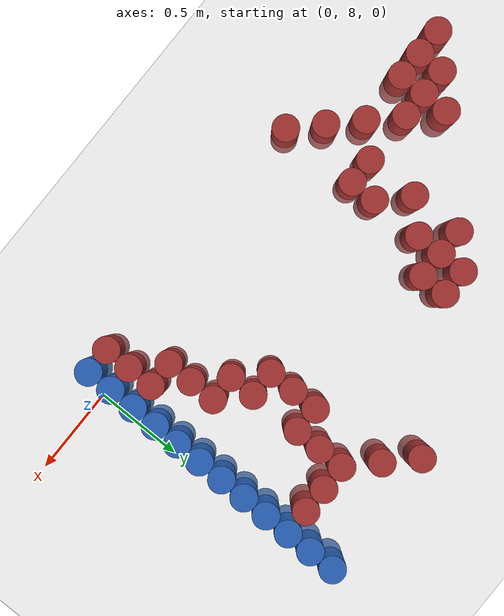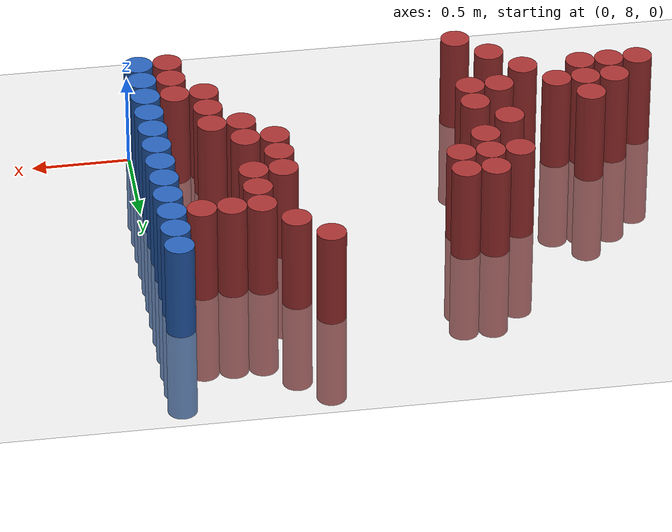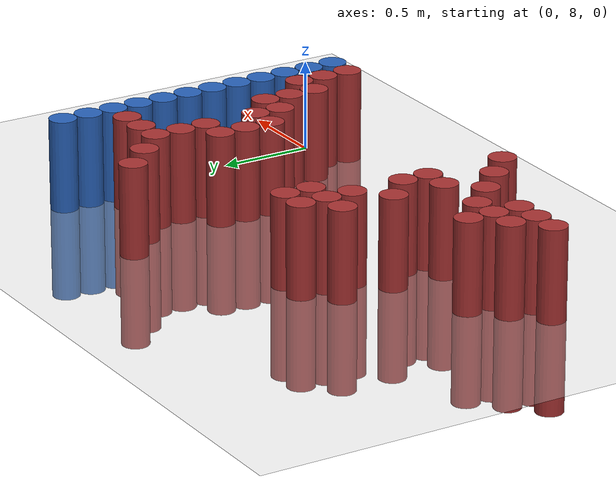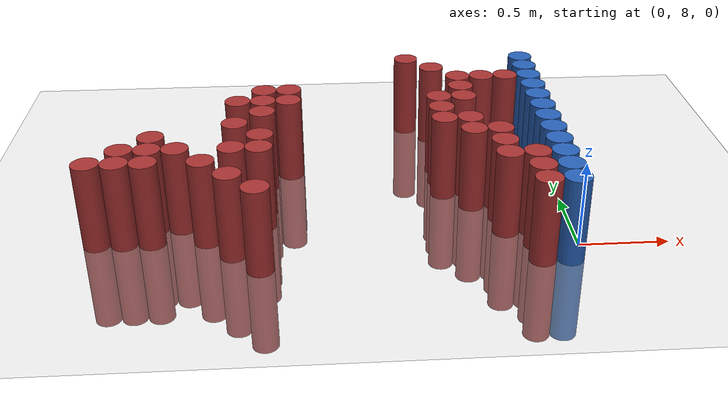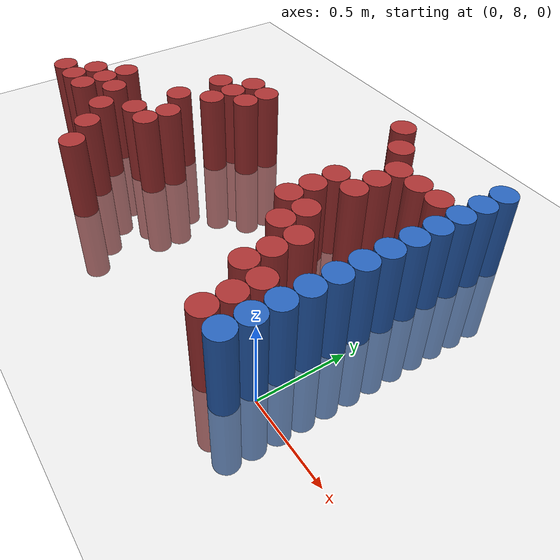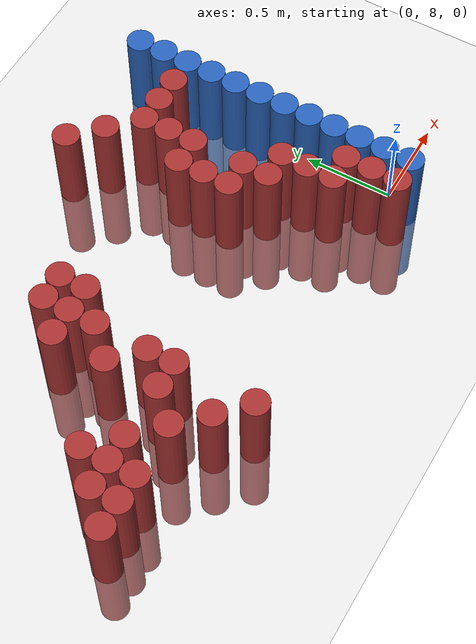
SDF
<sdf version="1.6">
 <world name="default">
  <model name="ground_plane">
   <static>1</static>
   <link name="link">
    <collision name="collision">
     <geometry><plane><normal>0 0 1</normal><size>100 100</size></plane></geometry>
     <surface><friction><ode><mu>100</mu><mu2>50</mu2></ode></friction></surface>
    </collision>
    <visual name="visual">
     <cast_shadows>0</cast_shadows>
     <geometry><plane><normal>0 0 1</normal><size>100 100</size></plane></geometry>
     <material>
      <script><uri>file://media/materials/scripts/gazebo.material</uri><name>Gazebo/Grey</name></script>
     </material>
    </visual>
   </link>
  </model>
  <model name="unit_cylinder_167">
   <static>1</static>
   <pose>-2.625000 8.175000 0.000000 0.000000 0.000000 0.000000</pose>
   <link name="link">
    <inertial>
     <mass>1</mass>
     <inertia><ixx>0.145833</ixx><ixy>0</ixy><ixz>0</ixz><iyy>0.145833</iyy><iyz>0</iyz><izz>0.125</izz></inertia>
    </inertial>
    <collision name="collision">
     <geometry><cylinder><radius>0.075000</radius><length>1</length></cylinder></geometry>
    </collision>
    <visual name="visual">
     <geometry><cylinder><radius>0.075000</radius><length>1</length></cylinder></geometry>
     <material>
      <ambient>0.648000 0.192000 0.192000 1</ambient>
      <diffuse>0.648000 0.192000 0.192000 1</diffuse>
     </material>
     <material>
      <script><name>Gazebo/Grey</name><uri>file://media/materials/scripts/gazebo.material</uri></script>
     </material>
    </visual>
   </link>
  </model>
  <model name="unit_cylinder_170">
   <static>1</static>
   <pose>-2.475000 8.175000 0.000000 0.000000 0.000000 0.000000</pose>
   <link name="link">
    <inertial>
     <mass>1</mass>
     <inertia><ixx>0.145833</ixx><ixy>0</ixy><ixz>0</ixz><iyy>0.145833</iyy><iyz>0</iyz><izz>0.125</izz></inertia>
    </inertial>
    <collision name="collision">
     <geometry><cylinder><radius>0.075000</radius><length>1</length></cylinder></geometry>
    </collision>
    <visual name="visual">
     <geometry><cylinder><radius>0.075000</radius><length>1</length></cylinder></geometry>
     <material>
      <ambient>0.648000 0.192000 0.192000 1</ambient>
      <diffuse>0.648000 0.192000 0.192000 1</diffuse>
     </material>
     <material>
      <script><name>Gazebo/Grey</name><uri>file://media/materials/scripts/gazebo.material</uri></script>
     </material>
    </visual>
   </link>
  </model>
  <model name="unit_cylinder_171">
   <static>1</static>
   <pose>-2.475000 8.325000 0.000000 0.000000 0.000000 0.000000</pose>
   <link name="link">
    <inertial>
     <mass>1</mass>
     <inertia><ixx>0.145833</ixx><ixy>0</ixy><ixz>0</ixz><iyy>0.145833</iyy><iyz>0</iyz><izz>0.125</izz></inertia>
    </inertial>
    <collision name="collision">
     <geometry><cylinder><radius>0.075000</radius><length>1</length></cylinder></geometry>
    </collision>
    <visual name="visual">
     <geometry><cylinder><radius>0.075000</radius><length>1</length></cylinder></geometry>
     <material>
      <ambient>0.648000 0.192000 0.192000 1</ambient>
      <diffuse>0.648000 0.192000 0.192000 1</diffuse>
     </material>
     <material>
      <script><name>Gazebo/Grey</name><uri>file://media/materials/scripts/gazebo.material</uri></script>
     </material>
    </visual>
   </link>
  </model>
  <model name="unit_cylinder_173">
   <static>1</static>
   <pose>-2.325000 8.175000 0.000000 0.000000 0.000000 0.000000</pose>
   <link name="link">
    <inertial>
     <mass>1</mass>
     <inertia><ixx>0.145833</ixx><ixy>0</ixy><ixz>0</ixz><iyy>0.145833</iyy><iyz>0</iyz><izz>0.125</izz></inertia>
    </inertial>
    <collision name="collision">
     <geometry><cylinder><radius>0.075000</radius><length>1</length></cylinder></geometry>
    </collision>
    <visual name="visual">
     <geometry><cylinder><radius>0.075000</radius><length>1</length></cylinder></geometry>
     <material>
      <ambient>0.648000 0.192000 0.192000 1</ambient>
      <diffuse>0.648000 0.192000 0.192000 1</diffuse>
     </material>
     <material>
      <script><name>Gazebo/Grey</name><uri>file://media/materials/scripts/gazebo.material</uri></script>
     </material>
    </visual>
   </link>
  </model>
  <model name="unit_cylinder_174">
   <static>1</static>
   <pose>-2.325000 8.325000 0.000000 0.000000 0.000000 0.000000</pose>
   <link name="link">
    <inertial>
     <mass>1</mass>
     <inertia><ixx>0.145833</ixx><ixy>0</ixy><ixz>0</ixz><iyy>0.145833</iyy><iyz>0</iyz><izz>0.125</izz></inertia>
    </inertial>
    <collision name="collision">
     <geometry><cylinder><radius>0.075000</radius><length>1</length></cylinder></geometry>
    </collision>
    <visual name="visual">
     <geometry><cylinder><radius>0.075000</radius><length>1</length></cylinder></geometry>
     <material>
      <ambient>0.648000 0.192000 0.192000 1</ambient>
      <diffuse>0.648000 0.192000 0.192000 1</diffuse>
     </material>
     <material>
      <script><name>Gazebo/Grey</name><uri>file://media/materials/scripts/gazebo.material</uri></script>
     </material>
    </visual>
   </link>
  </model>
  <model name="unit_cylinder_175">
   <static>1</static>
   <pose>-2.325000 8.475000 0.000000 0.000000 0.000000 0.000000</pose>
   <link name="link">
    <inertial>
     <mass>1</mass>
     <inertia><ixx>0.145833</ixx><ixy>0</ixy><ixz>0</ixz><iyy>0.145833</iyy><iyz>0</iyz><izz>0.125</izz></inertia>
    </inertial>
    <collision name="collision">
     <geometry><cylinder><radius>0.075000</radius><length>1</length></cylinder></geometry>
    </collision>
    <visual name="visual">
     <geometry><cylinder><radius>0.075000</radius><length>1</length></cylinder></geometry>
     <material>
      <ambient>0.648000 0.192000 0.192000 1</ambient>
      <diffuse>0.648000 0.192000 0.192000 1</diffuse>
     </material>
     <material>
      <script><name>Gazebo/Grey</name><uri>file://media/materials/scripts/gazebo.material</uri></script>
     </material>
    </visual>
   </link>
  </model>
  <model name="unit_cylinder_177">
   <static>1</static>
   <pose>-2.175000 8.325000 0.000000 0.000000 0.000000 0.000000</pose>
   <link name="link">
    <inertial>
     <mass>1</mass>
     <inertia><ixx>0.145833</ixx><ixy>0</ixy><ixz>0</ixz><iyy>0.145833</iyy><iyz>0</iyz><izz>0.125</izz></inertia>
    </inertial>
    <collision name="collision">
     <geometry><cylinder><radius>0.075000</radius><length>1</length></cylinder></geometry>
    </collision>
    <visual name="visual">
     <geometry><cylinder><radius>0.075000</radius><length>1</length></cylinder></geometry>
     <material>
      <ambient>0.648000 0.192000 0.192000 1</ambient>
      <diffuse>0.648000 0.192000 0.192000 1</diffuse>
     </material>
     <material>
      <script><name>Gazebo/Grey</name><uri>file://media/materials/scripts/gazebo.material</uri></script>
     </material>
    </visual>
   </link>
  </model>
  <model name="unit_cylinder_181">
   <static>1</static>
   <pose>-2.025000 8.175000 0.000000 0.000000 0.000000 0.000000</pose>
   <link name="link">
    <inertial>
     <mass>1</mass>
     <inertia><ixx>0.145833</ixx><ixy>0</ixy><ixz>0</ixz><iyy>0.145833</iyy><iyz>0</iyz><izz>0.125</izz></inertia>
    </inertial>
    <collision name="collision">
     <geometry><cylinder><radius>0.075000</radius><length>1</length></cylinder></geometry>
    </collision>
    <visual name="visual">
     <geometry><cylinder><radius>0.075000</radius><length>1</length></cylinder></geometry>
     <material>
      <ambient>0.648000 0.192000 0.192000 1</ambient>
      <diffuse>0.648000 0.192000 0.192000 1</diffuse>
     </material>
     <material>
      <script><name>Gazebo/Grey</name><uri>file://media/materials/scripts/gazebo.material</uri></script>
     </material>
    </visual>
   </link>
  </model>
  <model name="unit_cylinder_188">
   <static>1</static>
   <pose>-1.875000 8.025000 0.000000 0.000000 0.000000 0.000000</pose>
   <link name="link">
    <inertial>
     <mass>1</mass>
     <inertia><ixx>0.145833</ixx><ixy>0</ixy><ixz>0</ixz><iyy>0.145833</iyy><iyz>0</iyz><izz>0.125</izz></inertia>
    </inertial>
    <collision name="collision">
     <geometry><cylinder><radius>0.075000</radius><length>1</length></cylinder></geometry>
    </collision>
    <visual name="visual">
     <geometry><cylinder><radius>0.075000</radius><length>1</length></cylinder></geometry>
     <material>
      <ambient>0.648000 0.192000 0.192000 1</ambient>
      <diffuse>0.648000 0.192000 0.192000 1</diffuse>
     </material>
     <material>
      <script><name>Gazebo/Grey</name><uri>file://media/materials/scripts/gazebo.material</uri></script>
     </material>
    </visual>
   </link>
  </model>
  <model name="unit_cylinder_189">
   <static>1</static>
   <pose>-1.875000 8.325000 0.000000 0.000000 0.000000 0.000000</pose>
   <link name="link">
    <inertial>
     <mass>1</mass>
     <inertia><ixx>0.145833</ixx><ixy>0</ixy><ixz>0</ixz><iyy>0.145833</iyy><iyz>0</iyz><izz>0.125</izz></inertia>
    </inertial>
    <collision name="collision">
     <geometry><cylinder><radius>0.075000</radius><length>1</length></cylinder></geometry>
    </collision>
    <visual name="visual">
     <geometry><cylinder><radius>0.075000</radius><length>1</length></cylinder></geometry>
     <material>
      <ambient>0.648000 0.192000 0.192000 1</ambient>
      <diffuse>0.648000 0.192000 0.192000 1</diffuse>
     </material>
     <material>
      <script><name>Gazebo/Grey</name><uri>file://media/materials/scripts/gazebo.material</uri></script>
     </material>
    </visual>
   </link>
  </model>
  <model name="unit_cylinder_190">
   <static>1</static>
   <pose>-1.875000 8.625000 0.000000 0.000000 0.000000 0.000000</pose>
   <link name="link">
    <inertial>
     <mass>1</mass>
     <inertia><ixx>0.145833</ixx><ixy>0</ixy><ixz>0</ixz><iyy>0.145833</iyy><iyz>0</iyz><izz>0.125</izz></inertia>
    </inertial>
    <collision name="collision">
     <geometry><cylinder><radius>0.075000</radius><length>1</length></cylinder></geometry>
    </collision>
    <visual name="visual">
     <geometry><cylinder><radius>0.075000</radius><length>1</length></cylinder></geometry>
     <material>
      <ambient>0.648000 0.192000 0.192000 1</ambient>
      <diffuse>0.648000 0.192000 0.192000 1</diffuse>
     </material>
     <material>
      <script><name>Gazebo/Grey</name><uri>file://media/materials/scripts/gazebo.material</uri></script>
     </material>
    </visual>
   </link>
  </model>
  <model name="unit_cylinder_191">
   <static>1</static>
   <pose>-1.875000 8.925000 0.000000 0.000000 0.000000 0.000000</pose>
   <link name="link">
    <inertial>
     <mass>1</mass>
     <inertia><ixx>0.145833</ixx><ixy>0</ixy><ixz>0</ixz><iyy>0.145833</iyy><iyz>0</iyz><izz>0.125</izz></inertia>
    </inertial>
    <collision name="collision">
     <geometry><cylinder><radius>0.075000</radius><length>1</length></cylinder></geometry>
    </collision>
    <visual name="visual">
     <geometry><cylinder><radius>0.075000</radius><length>1</length></cylinder></geometry>
     <material>
      <ambient>0.648000 0.192000 0.192000 1</ambient>
      <diffuse>0.648000 0.192000 0.192000 1</diffuse>
     </material>
     <material>
      <script><name>Gazebo/Grey</name><uri>file://media/materials/scripts/gazebo.material</uri></script>
     </material>
    </visual>
   </link>
  </model>
  <model name="unit_cylinder_195">
   <static>1</static>
   <pose>-1.725000 7.875000 0.000000 0.000000 0.000000 0.000000</pose>
   <link name="link">
    <inertial>
     <mass>1</mass>
     <inertia><ixx>0.145833</ixx><ixy>0</ixy><ixz>0</ixz><iyy>0.145833</iyy><iyz>0</iyz><izz>0.125</izz></inertia>
    </inertial>
    <collision name="collision">
     <geometry><cylinder><radius>0.075000</radius><length>1</length></cylinder></geometry>
    </collision>
    <visual name="visual">
     <geometry><cylinder><radius>0.075000</radius><length>1</length></cylinder></geometry>
     <material>
      <ambient>0.648000 0.192000 0.192000 1</ambient>
      <diffuse>0.648000 0.192000 0.192000 1</diffuse>
     </material>
     <material>
      <script><name>Gazebo/Grey</name><uri>file://media/materials/scripts/gazebo.material</uri></script>
     </material>
    </visual>
   </link>
  </model>
  <model name="unit_cylinder_196">
   <static>1</static>
   <pose>-1.725000 8.325000 0.000000 0.000000 0.000000 0.000000</pose>
   <link name="link">
    <inertial>
     <mass>1</mass>
     <inertia><ixx>0.145833</ixx><ixy>0</ixy><ixz>0</ixz><iyy>0.145833</iyy><iyz>0</iyz><izz>0.125</izz></inertia>
    </inertial>
    <collision name="collision">
     <geometry><cylinder><radius>0.075000</radius><length>1</length></cylinder></geometry>
    </collision>
    <visual name="visual">
     <geometry><cylinder><radius>0.075000</radius><length>1</length></cylinder></geometry>
     <material>
      <ambient>0.648000 0.192000 0.192000 1</ambient>
      <diffuse>0.648000 0.192000 0.192000 1</diffuse>
     </material>
     <material>
      <script><name>Gazebo/Grey</name><uri>file://media/materials/scripts/gazebo.material</uri></script>
     </material>
    </visual>
   </link>
  </model>
  <model name="unit_cylinder_197">
   <static>1</static>
   <pose>-1.725000 8.475000 0.000000 0.000000 0.000000 0.000000</pose>
   <link name="link">
    <inertial>
     <mass>1</mass>
     <inertia><ixx>0.145833</ixx><ixy>0</ixy><ixz>0</ixz><iyy>0.145833</iyy><iyz>0</iyz><izz>0.125</izz></inertia>
    </inertial>
    <collision name="collision">
     <geometry><cylinder><radius>0.075000</radius><length>1</length></cylinder></geometry>
    </collision>
    <visual name="visual">
     <geometry><cylinder><radius>0.075000</radius><length>1</length></cylinder></geometry>
     <material>
      <ambient>0.648000 0.192000 0.192000 1</ambient>
      <diffuse>0.648000 0.192000 0.192000 1</diffuse>
     </material>
     <material>
      <script><name>Gazebo/Grey</name><uri>file://media/materials/scripts/gazebo.material</uri></script>
     </material>
    </visual>
   </link>
  </model>
  <model name="unit_cylinder_198">
   <static>1</static>
   <pose>-1.725000 8.775000 0.000000 0.000000 0.000000 0.000000</pose>
   <link name="link">
    <inertial>
     <mass>1</mass>
     <inertia><ixx>0.145833</ixx><ixy>0</ixy><ixz>0</ixz><iyy>0.145833</iyy><iyz>0</iyz><izz>0.125</izz></inertia>
    </inertial>
    <collision name="collision">
     <geometry><cylinder><radius>0.075000</radius><length>1</length></cylinder></geometry>
    </collision>
    <visual name="visual">
     <geometry><cylinder><radius>0.075000</radius><length>1</length></cylinder></geometry>
     <material>
      <ambient>0.648000 0.192000 0.192000 1</ambient>
      <diffuse>0.648000 0.192000 0.192000 1</diffuse>
     </material>
     <material>
      <script><name>Gazebo/Grey</name><uri>file://media/materials/scripts/gazebo.material</uri></script>
     </material>
    </visual>
   </link>
  </model>
  <model name="unit_cylinder_199">
   <static>1</static>
   <pose>-1.725000 8.925000 0.000000 0.000000 0.000000 0.000000</pose>
   <link name="link">
    <inertial>
     <mass>1</mass>
     <inertia><ixx>0.145833</ixx><ixy>0</ixy><ixz>0</ixz><iyy>0.145833</iyy><iyz>0</iyz><izz>0.125</izz></inertia>
    </inertial>
    <collision name="collision">
     <geometry><cylinder><radius>0.075000</radius><length>1</length></cylinder></geometry>
    </collision>
    <visual name="visual">
     <geometry><cylinder><radius>0.075000</radius><length>1</length></cylinder></geometry>
     <material>
      <ambient>0.648000 0.192000 0.192000 1</ambient>
      <diffuse>0.648000 0.192000 0.192000 1</diffuse>
     </material>
     <material>
      <script><name>Gazebo/Grey</name><uri>file://media/materials/scripts/gazebo.material</uri></script>
     </material>
    </visual>
   </link>
  </model>
  <model name="unit_cylinder_200">
   <static>1</static>
   <pose>-1.725000 9.075000 0.000000 0.000000 0.000000 0.000000</pose>
   <link name="link">
    <inertial>
     <mass>1</mass>
     <inertia><ixx>0.145833</ixx><ixy>0</ixy><ixz>0</ixz><iyy>0.145833</iyy><iyz>0</iyz><izz>0.125</izz></inertia>
    </inertial>
    <collision name="collision">
     <geometry><cylinder><radius>0.075000</radius><length>1</length></cylinder></geometry>
    </collision>
    <visual name="visual">
     <geometry><cylinder><radius>0.075000</radius><length>1</length></cylinder></geometry>
     <material>
      <ambient>0.648000 0.192000 0.192000 1</ambient>
      <diffuse>0.648000 0.192000 0.192000 1</diffuse>
     </material>
     <material>
      <script><name>Gazebo/Grey</name><uri>file://media/materials/scripts/gazebo.material</uri></script>
     </material>
    </visual>
   </link>
  </model>
  <model name="unit_cylinder_204">
   <static>1</static>
   <pose>-1.575000 8.925000 0.000000 0.000000 0.000000 0.000000</pose>
   <link name="link">
    <inertial>
     <mass>1</mass>
     <inertia><ixx>0.145833</ixx><ixy>0</ixy><ixz>0</ixz><iyy>0.145833</iyy><iyz>0</iyz><izz>0.125</izz></inertia>
    </inertial>
    <collision name="collision">
     <geometry><cylinder><radius>0.075000</radius><length>1</length></cylinder></geometry>
    </collision>
    <visual name="visual">
     <geometry><cylinder><radius>0.075000</radius><length>1</length></cylinder></geometry>
     <material>
      <ambient>0.648000 0.192000 0.192000 1</ambient>
      <diffuse>0.648000 0.192000 0.192000 1</diffuse>
     </material>
     <material>
      <script><name>Gazebo/Grey</name><uri>file://media/materials/scripts/gazebo.material</uri></script>
     </material>
    </visual>
   </link>
  </model>
  <model name="unit_cylinder_205">
   <static>1</static>
   <pose>-1.575000 9.075000 0.000000 0.000000 0.000000 0.000000</pose>
   <link name="link">
    <inertial>
     <mass>1</mass>
     <inertia><ixx>0.145833</ixx><ixy>0</ixy><ixz>0</ixz><iyy>0.145833</iyy><iyz>0</iyz><izz>0.125</izz></inertia>
    </inertial>
    <collision name="collision">
     <geometry><cylinder><radius>0.075000</radius><length>1</length></cylinder></geometry>
    </collision>
    <visual name="visual">
     <geometry><cylinder><radius>0.075000</radius><length>1</length></cylinder></geometry>
     <material>
      <ambient>0.648000 0.192000 0.192000 1</ambient>
      <diffuse>0.648000 0.192000 0.192000 1</diffuse>
     </material>
     <material>
      <script><name>Gazebo/Grey</name><uri>file://media/materials/scripts/gazebo.material</uri></script>
     </material>
    </visual>
   </link>
  </model>
  <model name="unit_cylinder_234">
   <static>1</static>
   <pose>-0.825000 9.525000 0.000000 0.000000 0.000000 0.000000</pose>
   <link name="link">
    <inertial>
     <mass>1</mass>
     <inertia><ixx>0.145833</ixx><ixy>0</ixy><ixz>0</ixz><iyy>0.145833</iyy><iyz>0</iyz><izz>0.125</izz></inertia>
    </inertial>
    <collision name="collision">
     <geometry><cylinder><radius>0.075000</radius><length>1</length></cylinder></geometry>
    </collision>
    <visual name="visual">
     <geometry><cylinder><radius>0.075000</radius><length>1</length></cylinder></geometry>
     <material>
      <ambient>0.648000 0.192000 0.192000 1</ambient>
      <diffuse>0.648000 0.192000 0.192000 1</diffuse>
     </material>
     <material>
      <script><name>Gazebo/Grey</name><uri>file://media/materials/scripts/gazebo.material</uri></script>
     </material>
    </visual>
   </link>
  </model>
  <model name="unit_cylinder_242">
   <static>1</static>
   <pose>-0.675000 8.625000 0.000000 0.000000 0.000000 0.000000</pose>
   <link name="link">
    <inertial>
     <mass>1</mass>
     <inertia><ixx>0.145833</ixx><ixy>0</ixy><ixz>0</ixz><iyy>0.145833</iyy><iyz>0</iyz><izz>0.125</izz></inertia>
    </inertial>
    <collision name="collision">
     <geometry><cylinder><radius>0.075000</radius><length>1</length></cylinder></geometry>
    </collision>
    <visual name="visual">
     <geometry><cylinder><radius>0.075000</radius><length>1</length></cylinder></geometry>
     <material>
      <ambient>0.648000 0.192000 0.192000 1</ambient>
      <diffuse>0.648000 0.192000 0.192000 1</diffuse>
     </material>
     <material>
      <script><name>Gazebo/Grey</name><uri>file://media/materials/scripts/gazebo.material</uri></script>
     </material>
    </visual>
   </link>
  </model>
  <model name="unit_cylinder_243">
   <static>1</static>
   <pose>-0.675000 8.775000 0.000000 0.000000 0.000000 0.000000</pose>
   <link name="link">
    <inertial>
     <mass>1</mass>
     <inertia><ixx>0.145833</ixx><ixy>0</ixy><ixz>0</ixz><iyy>0.145833</iyy><iyz>0</iyz><izz>0.125</izz></inertia>
    </inertial>
    <collision name="collision">
     <geometry><cylinder><radius>0.075000</radius><length>1</length></cylinder></geometry>
    </collision>
    <visual name="visual">
     <geometry><cylinder><radius>0.075000</radius><length>1</length></cylinder></geometry>
     <material>
      <ambient>0.648000 0.192000 0.192000 1</ambient>
      <diffuse>0.648000 0.192000 0.192000 1</diffuse>
     </material>
     <material>
      <script><name>Gazebo/Grey</name><uri>file://media/materials/scripts/gazebo.material</uri></script>
     </material>
    </visual>
   </link>
  </model>
  <model name="unit_cylinder_244">
   <static>1</static>
   <pose>-0.675000 8.925000 0.000000 0.000000 0.000000 0.000000</pose>
   <link name="link">
    <inertial>
     <mass>1</mass>
     <inertia><ixx>0.145833</ixx><ixy>0</ixy><ixz>0</ixz><iyy>0.145833</iyy><iyz>0</iyz><izz>0.125</izz></inertia>
    </inertial>
    <collision name="collision">
     <geometry><cylinder><radius>0.075000</radius><length>1</length></cylinder></geometry>
    </collision>
    <visual name="visual">
     <geometry><cylinder><radius>0.075000</radius><length>1</length></cylinder></geometry>
     <material>
      <ambient>0.648000 0.192000 0.192000 1</ambient>
      <diffuse>0.648000 0.192000 0.192000 1</diffuse>
     </material>
     <material>
      <script><name>Gazebo/Grey</name><uri>file://media/materials/scripts/gazebo.material</uri></script>
     </material>
    </visual>
   </link>
  </model>
  <model name="unit_cylinder_245">
   <static>1</static>
   <pose>-0.675000 9.375000 0.000000 0.000000 0.000000 0.000000</pose>
   <link name="link">
    <inertial>
     <mass>1</mass>
     <inertia><ixx>0.145833</ixx><ixy>0</ixy><ixz>0</ixz><iyy>0.145833</iyy><iyz>0</iyz><izz>0.125</izz></inertia>
    </inertial>
    <collision name="collision">
     <geometry><cylinder><radius>0.075000</radius><length>1</length></cylinder></geometry>
    </collision>
    <visual name="visual">
     <geometry><cylinder><radius>0.075000</radius><length>1</length></cylinder></geometry>
     <material>
      <ambient>0.648000 0.192000 0.192000 1</ambient>
      <diffuse>0.648000 0.192000 0.192000 1</diffuse>
     </material>
     <material>
      <script><name>Gazebo/Grey</name><uri>file://media/materials/scripts/gazebo.material</uri></script>
     </material>
    </visual>
   </link>
  </model>
  <model name="unit_cylinder_248">
   <static>1</static>
   <pose>-0.525000 8.475000 0.000000 0.000000 0.000000 0.000000</pose>
   <link name="link">
    <inertial>
     <mass>1</mass>
     <inertia><ixx>0.145833</ixx><ixy>0</ixy><ixz>0</ixz><iyy>0.145833</iyy><iyz>0</iyz><izz>0.125</izz></inertia>
    </inertial>
    <collision name="collision">
     <geometry><cylinder><radius>0.075000</radius><length>1</length></cylinder></geometry>
    </collision>
    <visual name="visual">
     <geometry><cylinder><radius>0.075000</radius><length>1</length></cylinder></geometry>
     <material>
      <ambient>0.648000 0.192000 0.192000 1</ambient>
      <diffuse>0.648000 0.192000 0.192000 1</diffuse>
     </material>
     <material>
      <script><name>Gazebo/Grey</name><uri>file://media/materials/scripts/gazebo.material</uri></script>
     </material>
    </visual>
   </link>
  </model>
  <model name="unit_cylinder_249">
   <static>1</static>
   <pose>-0.525000 8.625000 0.000000 0.000000 0.000000 0.000000</pose>
   <link name="link">
    <inertial>
     <mass>1</mass>
     <inertia><ixx>0.145833</ixx><ixy>0</ixy><ixz>0</ixz><iyy>0.145833</iyy><iyz>0</iyz><izz>0.125</izz></inertia>
    </inertial>
    <collision name="collision">
     <geometry><cylinder><radius>0.075000</radius><length>1</length></cylinder></geometry>
    </collision>
    <visual name="visual">
     <geometry><cylinder><radius>0.075000</radius><length>1</length></cylinder></geometry>
     <material>
      <ambient>0.648000 0.192000 0.192000 1</ambient>
      <diffuse>0.648000 0.192000 0.192000 1</diffuse>
     </material>
     <material>
      <script><name>Gazebo/Grey</name><uri>file://media/materials/scripts/gazebo.material</uri></script>
     </material>
    </visual>
   </link>
  </model>
  <model name="unit_cylinder_250">
   <static>1</static>
   <pose>-0.525000 8.925000 0.000000 0.000000 0.000000 0.000000</pose>
   <link name="link">
    <inertial>
     <mass>1</mass>
     <inertia><ixx>0.145833</ixx><ixy>0</ixy><ixz>0</ixz><iyy>0.145833</iyy><iyz>0</iyz><izz>0.125</izz></inertia>
    </inertial>
    <collision name="collision">
     <geometry><cylinder><radius>0.075000</radius><length>1</length></cylinder></geometry>
    </collision>
    <visual name="visual">
     <geometry><cylinder><radius>0.075000</radius><length>1</length></cylinder></geometry>
     <material>
      <ambient>0.648000 0.192000 0.192000 1</ambient>
      <diffuse>0.648000 0.192000 0.192000 1</diffuse>
     </material>
     <material>
      <script><name>Gazebo/Grey</name><uri>file://media/materials/scripts/gazebo.material</uri></script>
     </material>
    </visual>
   </link>
  </model>
  <model name="unit_cylinder_251">
   <static>1</static>
   <pose>-0.525000 9.075000 0.000000 0.000000 0.000000 0.000000</pose>
   <link name="link">
    <inertial>
     <mass>1</mass>
     <inertia><ixx>0.145833</ixx><ixy>0</ixy><ixz>0</ixz><iyy>0.145833</iyy><iyz>0</iyz><izz>0.125</izz></inertia>
    </inertial>
    <collision name="collision">
     <geometry><cylinder><radius>0.075000</radius><length>1</length></cylinder></geometry>
    </collision>
    <visual name="visual">
     <geometry><cylinder><radius>0.075000</radius><length>1</length></cylinder></geometry>
     <material>
      <ambient>0.648000 0.192000 0.192000 1</ambient>
      <diffuse>0.648000 0.192000 0.192000 1</diffuse>
     </material>
     <material>
      <script><name>Gazebo/Grey</name><uri>file://media/materials/scripts/gazebo.material</uri></script>
     </material>
    </visual>
   </link>
  </model>
  <model name="unit_cylinder_252">
   <static>1</static>
   <pose>-0.525000 9.225000 0.000000 0.000000 0.000000 0.000000</pose>
   <link name="link">
    <inertial>
     <mass>1</mass>
     <inertia><ixx>0.145833</ixx><ixy>0</ixy><ixz>0</ixz><iyy>0.145833</iyy><iyz>0</iyz><izz>0.125</izz></inertia>
    </inertial>
    <collision name="collision">
     <geometry><cylinder><radius>0.075000</radius><length>1</length></cylinder></geometry>
    </collision>
    <visual name="visual">
     <geometry><cylinder><radius>0.075000</radius><length>1</length></cylinder></geometry>
     <material>
      <ambient>0.648000 0.192000 0.192000 1</ambient>
      <diffuse>0.648000 0.192000 0.192000 1</diffuse>
     </material>
     <material>
      <script><name>Gazebo/Grey</name><uri>file://media/materials/scripts/gazebo.material</uri></script>
     </material>
    </visual>
   </link>
  </model>
  <model name="unit_cylinder_256">
   <static>1</static>
   <pose>-0.375000 8.175000 0.000000 0.000000 0.000000 0.000000</pose>
   <link name="link">
    <inertial>
     <mass>1</mass>
     <inertia><ixx>0.145833</ixx><ixy>0</ixy><ixz>0</ixz><iyy>0.145833</iyy><iyz>0</iyz><izz>0.125</izz></inertia>
    </inertial>
    <collision name="collision">
     <geometry><cylinder><radius>0.075000</radius><length>1</length></cylinder></geometry>
    </collision>
    <visual name="visual">
     <geometry><cylinder><radius>0.075000</radius><length>1</length></cylinder></geometry>
     <material>
      <ambient>0.648000 0.192000 0.192000 1</ambient>
      <diffuse>0.648000 0.192000 0.192000 1</diffuse>
     </material>
     <material>
      <script><name>Gazebo/Grey</name><uri>file://media/materials/scripts/gazebo.material</uri></script>
     </material>
    </visual>
   </link>
  </model>
  <model name="unit_cylinder_257">
   <static>1</static>
   <pose>-0.375000 8.325000 0.000000 0.000000 0.000000 0.000000</pose>
   <link name="link">
    <inertial>
     <mass>1</mass>
     <inertia><ixx>0.145833</ixx><ixy>0</ixy><ixz>0</ixz><iyy>0.145833</iyy><iyz>0</iyz><izz>0.125</izz></inertia>
    </inertial>
    <collision name="collision">
     <geometry><cylinder><radius>0.075000</radius><length>1</length></cylinder></geometry>
    </collision>
    <visual name="visual">
     <geometry><cylinder><radius>0.075000</radius><length>1</length></cylinder></geometry>
     <material>
      <ambient>0.648000 0.192000 0.192000 1</ambient>
      <diffuse>0.648000 0.192000 0.192000 1</diffuse>
     </material>
     <material>
      <script><name>Gazebo/Grey</name><uri>file://media/materials/scripts/gazebo.material</uri></script>
     </material>
    </visual>
   </link>
  </model>
  <model name="unit_cylinder_258">
   <static>1</static>
   <pose>-0.375000 8.475000 0.000000 0.000000 0.000000 0.000000</pose>
   <link name="link">
    <inertial>
     <mass>1</mass>
     <inertia><ixx>0.145833</ixx><ixy>0</ixy><ixz>0</ixz><iyy>0.145833</iyy><iyz>0</iyz><izz>0.125</izz></inertia>
    </inertial>
    <collision name="collision">
     <geometry><cylinder><radius>0.075000</radius><length>1</length></cylinder></geometry>
    </collision>
    <visual name="visual">
     <geometry><cylinder><radius>0.075000</radius><length>1</length></cylinder></geometry>
     <material>
      <ambient>0.648000 0.192000 0.192000 1</ambient>
      <diffuse>0.648000 0.192000 0.192000 1</diffuse>
     </material>
     <material>
      <script><name>Gazebo/Grey</name><uri>file://media/materials/scripts/gazebo.material</uri></script>
     </material>
    </visual>
   </link>
  </model>
  <model name="unit_cylinder_259">
   <static>1</static>
   <pose>-0.375000 9.225000 0.000000 0.000000 0.000000 0.000000</pose>
   <link name="link">
    <inertial>
     <mass>1</mass>
     <inertia><ixx>0.145833</ixx><ixy>0</ixy><ixz>0</ixz><iyy>0.145833</iyy><iyz>0</iyz><izz>0.125</izz></inertia>
    </inertial>
    <collision name="collision">
     <geometry><cylinder><radius>0.075000</radius><length>1</length></cylinder></geometry>
    </collision>
    <visual name="visual">
     <geometry><cylinder><radius>0.075000</radius><length>1</length></cylinder></geometry>
     <material>
      <ambient>0.648000 0.192000 0.192000 1</ambient>
      <diffuse>0.648000 0.192000 0.192000 1</diffuse>
     </material>
     <material>
      <script><name>Gazebo/Grey</name><uri>file://media/materials/scripts/gazebo.material</uri></script>
     </material>
    </visual>
   </link>
  </model>
  <model name="unit_cylinder_267">
   <static>1</static>
   <pose>-0.225000 7.875000 0.000000 0.000000 0.000000 0.000000</pose>
   <link name="link">
    <inertial>
     <mass>1</mass>
     <inertia><ixx>0.145833</ixx><ixy>0</ixy><ixz>0</ixz><iyy>0.145833</iyy><iyz>0</iyz><izz>0.125</izz></inertia>
    </inertial>
    <collision name="collision">
     <geometry><cylinder><radius>0.075000</radius><length>1</length></cylinder></geometry>
    </collision>
    <visual name="visual">
     <geometry><cylinder><radius>0.075000</radius><length>1</length></cylinder></geometry>
     <material>
      <ambient>0.648000 0.192000 0.192000 1</ambient>
      <diffuse>0.648000 0.192000 0.192000 1</diffuse>
     </material>
     <material>
      <script><name>Gazebo/Grey</name><uri>file://media/materials/scripts/gazebo.material</uri></script>
     </material>
    </visual>
   </link>
  </model>
  <model name="unit_cylinder_268">
   <static>1</static>
   <pose>-0.225000 8.025000 0.000000 0.000000 0.000000 0.000000</pose>
   <link name="link">
    <inertial>
     <mass>1</mass>
     <inertia><ixx>0.145833</ixx><ixy>0</ixy><ixz>0</ixz><iyy>0.145833</iyy><iyz>0</iyz><izz>0.125</izz></inertia>
    </inertial>
    <collision name="collision">
     <geometry><cylinder><radius>0.075000</radius><length>1</length></cylinder></geometry>
    </collision>
    <visual name="visual">
     <geometry><cylinder><radius>0.075000</radius><length>1</length></cylinder></geometry>
     <material>
      <ambient>0.648000 0.192000 0.192000 1</ambient>
      <diffuse>0.648000 0.192000 0.192000 1</diffuse>
     </material>
     <material>
      <script><name>Gazebo/Grey</name><uri>file://media/materials/scripts/gazebo.material</uri></script>
     </material>
    </visual>
   </link>
  </model>
  <model name="unit_cylinder_269">
   <static>1</static>
   <pose>-0.225000 8.175000 0.000000 0.000000 0.000000 0.000000</pose>
   <link name="link">
    <inertial>
     <mass>1</mass>
     <inertia><ixx>0.145833</ixx><ixy>0</ixy><ixz>0</ixz><iyy>0.145833</iyy><iyz>0</iyz><izz>0.125</izz></inertia>
    </inertial>
    <collision name="collision">
     <geometry><cylinder><radius>0.075000</radius><length>1</length></cylinder></geometry>
    </collision>
    <visual name="visual">
     <geometry><cylinder><radius>0.075000</radius><length>1</length></cylinder></geometry>
     <material>
      <ambient>0.648000 0.192000 0.192000 1</ambient>
      <diffuse>0.648000 0.192000 0.192000 1</diffuse>
     </material>
     <material>
      <script><name>Gazebo/Grey</name><uri>file://media/materials/scripts/gazebo.material</uri></script>
     </material>
    </visual>
   </link>
  </model>
  <model name="unit_cylinder_270">
   <static>1</static>
   <pose>-0.225000 9.225000 0.000000 0.000000 0.000000 0.000000</pose>
   <link name="link">
    <inertial>
     <mass>1</mass>
     <inertia><ixx>0.145833</ixx><ixy>0</ixy><ixz>0</ixz><iyy>0.145833</iyy><iyz>0</iyz><izz>0.125</izz></inertia>
    </inertial>
    <collision name="collision">
     <geometry><cylinder><radius>0.075000</radius><length>1</length></cylinder></geometry>
    </collision>
    <visual name="visual">
     <geometry><cylinder><radius>0.075000</radius><length>1</length></cylinder></geometry>
     <material>
      <ambient>0.648000 0.192000 0.192000 1</ambient>
      <diffuse>0.648000 0.192000 0.192000 1</diffuse>
     </material>
     <material>
      <script><name>Gazebo/Grey</name><uri>file://media/materials/scripts/gazebo.material</uri></script>
     </material>
    </visual>
   </link>
  </model>
  <model name="unit_cylinder_289">
   <static>1</static>
   <pose>-0.075000 7.875000 0.000000 0.000000 0.000000 0.000000</pose>
   <link name="link">
    <inertial>
     <mass>1</mass>
     <inertia><ixx>0.145833</ixx><ixy>0</ixy><ixz>0</ixz><iyy>0.145833</iyy><iyz>0</iyz><izz>0.125</izz></inertia>
    </inertial>
    <collision name="collision">
     <geometry><cylinder><radius>0.075000</radius><length>1</length></cylinder></geometry>
    </collision>
    <visual name="visual">
     <geometry><cylinder><radius>0.075000</radius><length>1</length></cylinder></geometry>
     <material>
      <ambient>0.152000 0.379000 0.720000 1</ambient>
      <diffuse>0.152000 0.379000 0.720000 1</diffuse>
     </material>
     <material>
      <script><name>Gazebo/Grey</name><uri>file://media/materials/scripts/gazebo.material</uri></script>
     </material>
    </visual>
   </link>
  </model>
  <model name="unit_cylinder_290">
   <static>1</static>
   <pose>-0.075000 8.025000 0.000000 0.000000 0.000000 0.000000</pose>
   <link name="link">
    <inertial>
     <mass>1</mass>
     <inertia><ixx>0.145833</ixx><ixy>0</ixy><ixz>0</ixz><iyy>0.145833</iyy><iyz>0</iyz><izz>0.125</izz></inertia>
    </inertial>
    <collision name="collision">
     <geometry><cylinder><radius>0.075000</radius><length>1</length></cylinder></geometry>
    </collision>
    <visual name="visual">
     <geometry><cylinder><radius>0.075000</radius><length>1</length></cylinder></geometry>
     <material>
      <ambient>0.152000 0.379000 0.720000 1</ambient>
      <diffuse>0.152000 0.379000 0.720000 1</diffuse>
     </material>
     <material>
      <script><name>Gazebo/Grey</name><uri>file://media/materials/scripts/gazebo.material</uri></script>
     </material>
    </visual>
   </link>
  </model>
  <model name="unit_cylinder_291">
   <static>1</static>
   <pose>-0.075000 8.175000 0.000000 0.000000 0.000000 0.000000</pose>
   <link name="link">
    <inertial>
     <mass>1</mass>
     <inertia><ixx>0.145833</ixx><ixy>0</ixy><ixz>0</ixz><iyy>0.145833</iyy><iyz>0</iyz><izz>0.125</izz></inertia>
    </inertial>
    <collision name="collision">
     <geometry><cylinder><radius>0.075000</radius><length>1</length></cylinder></geometry>
    </collision>
    <visual name="visual">
     <geometry><cylinder><radius>0.075000</radius><length>1</length></cylinder></geometry>
     <material>
      <ambient>0.152000 0.379000 0.720000 1</ambient>
      <diffuse>0.152000 0.379000 0.720000 1</diffuse>
     </material>
     <material>
      <script><name>Gazebo/Grey</name><uri>file://media/materials/scripts/gazebo.material</uri></script>
     </material>
    </visual>
   </link>
  </model>
  <model name="unit_cylinder_292">
   <static>1</static>
   <pose>-0.075000 8.325000 0.000000 0.000000 0.000000 0.000000</pose>
   <link name="link">
    <inertial>
     <mass>1</mass>
     <inertia><ixx>0.145833</ixx><ixy>0</ixy><ixz>0</ixz><iyy>0.145833</iyy><iyz>0</iyz><izz>0.125</izz></inertia>
    </inertial>
    <collision name="collision">
     <geometry><cylinder><radius>0.075000</radius><length>1</length></cylinder></geometry>
    </collision>
    <visual name="visual">
     <geometry><cylinder><radius>0.075000</radius><length>1</length></cylinder></geometry>
     <material>
      <ambient>0.152000 0.379000 0.720000 1</ambient>
      <diffuse>0.152000 0.379000 0.720000 1</diffuse>
     </material>
     <material>
      <script><name>Gazebo/Grey</name><uri>file://media/materials/scripts/gazebo.material</uri></script>
     </material>
    </visual>
   </link>
  </model>
  <model name="unit_cylinder_293">
   <static>1</static>
   <pose>-0.075000 8.475000 0.000000 0.000000 0.000000 0.000000</pose>
   <link name="link">
    <inertial>
     <mass>1</mass>
     <inertia><ixx>0.145833</ixx><ixy>0</ixy><ixz>0</ixz><iyy>0.145833</iyy><iyz>0</iyz><izz>0.125</izz></inertia>
    </inertial>
    <collision name="collision">
     <geometry><cylinder><radius>0.075000</radius><length>1</length></cylinder></geometry>
    </collision>
    <visual name="visual">
     <geometry><cylinder><radius>0.075000</radius><length>1</length></cylinder></geometry>
     <material>
      <ambient>0.152000 0.379000 0.720000 1</ambient>
      <diffuse>0.152000 0.379000 0.720000 1</diffuse>
     </material>
     <material>
      <script><name>Gazebo/Grey</name><uri>file://media/materials/scripts/gazebo.material</uri></script>
     </material>
    </visual>
   </link>
  </model>
  <model name="unit_cylinder_294">
   <static>1</static>
   <pose>-0.075000 8.625000 0.000000 0.000000 0.000000 0.000000</pose>
   <link name="link">
    <inertial>
     <mass>1</mass>
     <inertia><ixx>0.145833</ixx><ixy>0</ixy><ixz>0</ixz><iyy>0.145833</iyy><iyz>0</iyz><izz>0.125</izz></inertia>
    </inertial>
    <collision name="collision">
     <geometry><cylinder><radius>0.075000</radius><length>1</length></cylinder></geometry>
    </collision>
    <visual name="visual">
     <geometry><cylinder><radius>0.075000</radius><length>1</length></cylinder></geometry>
     <material>
      <ambient>0.152000 0.379000 0.720000 1</ambient>
      <diffuse>0.152000 0.379000 0.720000 1</diffuse>
     </material>
     <material>
      <script><name>Gazebo/Grey</name><uri>file://media/materials/scripts/gazebo.material</uri></script>
     </material>
    </visual>
   </link>
  </model>
  <model name="unit_cylinder_295">
   <static>1</static>
   <pose>-0.075000 8.775000 0.000000 0.000000 0.000000 0.000000</pose>
   <link name="link">
    <inertial>
     <mass>1</mass>
     <inertia><ixx>0.145833</ixx><ixy>0</ixy><ixz>0</ixz><iyy>0.145833</iyy><iyz>0</iyz><izz>0.125</izz></inertia>
    </inertial>
    <collision name="collision">
     <geometry><cylinder><radius>0.075000</radius><length>1</length></cylinder></geometry>
    </collision>
    <visual name="visual">
     <geometry><cylinder><radius>0.075000</radius><length>1</length></cylinder></geometry>
     <material>
      <ambient>0.152000 0.379000 0.720000 1</ambient>
      <diffuse>0.152000 0.379000 0.720000 1</diffuse>
     </material>
     <material>
      <script><name>Gazebo/Grey</name><uri>file://media/materials/scripts/gazebo.material</uri></script>
     </material>
    </visual>
   </link>
  </model>
  <model name="unit_cylinder_296">
   <static>1</static>
   <pose>-0.075000 8.925000 0.000000 0.000000 0.000000 0.000000</pose>
   <link name="link">
    <inertial>
     <mass>1</mass>
     <inertia><ixx>0.145833</ixx><ixy>0</ixy><ixz>0</ixz><iyy>0.145833</iyy><iyz>0</iyz><izz>0.125</izz></inertia>
    </inertial>
    <collision name="collision">
     <geometry><cylinder><radius>0.075000</radius><length>1</length></cylinder></geometry>
    </collision>
    <visual name="visual">
     <geometry><cylinder><radius>0.075000</radius><length>1</length></cylinder></geometry>
     <material>
      <ambient>0.152000 0.379000 0.720000 1</ambient>
      <diffuse>0.152000 0.379000 0.720000 1</diffuse>
     </material>
     <material>
      <script><name>Gazebo/Grey</name><uri>file://media/materials/scripts/gazebo.material</uri></script>
     </material>
    </visual>
   </link>
  </model>
  <model name="unit_cylinder_297">
   <static>1</static>
   <pose>-0.075000 9.075000 0.000000 0.000000 0.000000 0.000000</pose>
   <link name="link">
    <inertial>
     <mass>1</mass>
     <inertia><ixx>0.145833</ixx><ixy>0</ixy><ixz>0</ixz><iyy>0.145833</iyy><iyz>0</iyz><izz>0.125</izz></inertia>
    </inertial>
    <collision name="collision">
     <geometry><cylinder><radius>0.075000</radius><length>1</length></cylinder></geometry>
    </collision>
    <visual name="visual">
     <geometry><cylinder><radius>0.075000</radius><length>1</length></cylinder></geometry>
     <material>
      <ambient>0.152000 0.379000 0.720000 1</ambient>
      <diffuse>0.152000 0.379000 0.720000 1</diffuse>
     </material>
     <material>
      <script><name>Gazebo/Grey</name><uri>file://media/materials/scripts/gazebo.material</uri></script>
     </material>
    </visual>
   </link>
  </model>
  <model name="unit_cylinder_298">
   <static>1</static>
   <pose>-0.075000 9.225000 0.000000 0.000000 0.000000 0.000000</pose>
   <link name="link">
    <inertial>
     <mass>1</mass>
     <inertia><ixx>0.145833</ixx><ixy>0</ixy><ixz>0</ixz><iyy>0.145833</iyy><iyz>0</iyz><izz>0.125</izz></inertia>
    </inertial>
    <collision name="collision">
     <geometry><cylinder><radius>0.075000</radius><length>1</length></cylinder></geometry>
    </collision>
    <visual name="visual">
     <geometry><cylinder><radius>0.075000</radius><length>1</length></cylinder></geometry>
     <material>
      <ambient>0.152000 0.379000 0.720000 1</ambient>
      <diffuse>0.152000 0.379000 0.720000 1</diffuse>
     </material>
     <material>
      <script><name>Gazebo/Grey</name><uri>file://media/materials/scripts/gazebo.material</uri></script>
     </material>
    </visual>
   </link>
  </model>
  <model name="unit_cylinder_299">
   <static>1</static>
   <pose>-0.075000 9.375000 0.000000 0.000000 0.000000 0.000000</pose>
   <link name="link">
    <inertial>
     <mass>1</mass>
     <inertia><ixx>0.145833</ixx><ixy>0</ixy><ixz>0</ixz><iyy>0.145833</iyy><iyz>0</iyz><izz>0.125</izz></inertia>
    </inertial>
    <collision name="collision">
     <geometry><cylinder><radius>0.075000</radius><length>1</length></cylinder></geometry>
    </collision>
    <visual name="visual">
     <geometry><cylinder><radius>0.075000</radius><length>1</length></cylinder></geometry>
     <material>
      <ambient>0.152000 0.379000 0.720000 1</ambient>
      <diffuse>0.152000 0.379000 0.720000 1</diffuse>
     </material>
     <material>
      <script><name>Gazebo/Grey</name><uri>file://media/materials/scripts/gazebo.material</uri></script>
     </material>
    </visual>
   </link>
  </model>
  <model name="unit_cylinder_300">
   <static>1</static>
   <pose>-0.075000 9.525000 0.000000 0.000000 0.000000 0.000000</pose>
   <link name="link">
    <inertial>
     <mass>1</mass>
     <inertia><ixx>0.145833</ixx><ixy>0</ixy><ixz>0</ixz><iyy>0.145833</iyy><iyz>0</iyz><izz>0.125</izz></inertia>
    </inertial>
    <collision name="collision">
     <geometry><cylinder><radius>0.075000</radius><length>1</length></cylinder></geometry>
    </collision>
    <visual name="visual">
     <geometry><cylinder><radius>0.075000</radius><length>1</length></cylinder></geometry>
     <material>
      <ambient>0.152000 0.379000 0.720000 1</ambient>
      <diffuse>0.152000 0.379000 0.720000 1</diffuse>
     </material>
     <material>
      <script><name>Gazebo/Grey</name><uri>file://media/materials/scripts/gazebo.material</uri></script>
     </material>
    </visual>
   </link>
  </model>
 </world>
</sdf>
